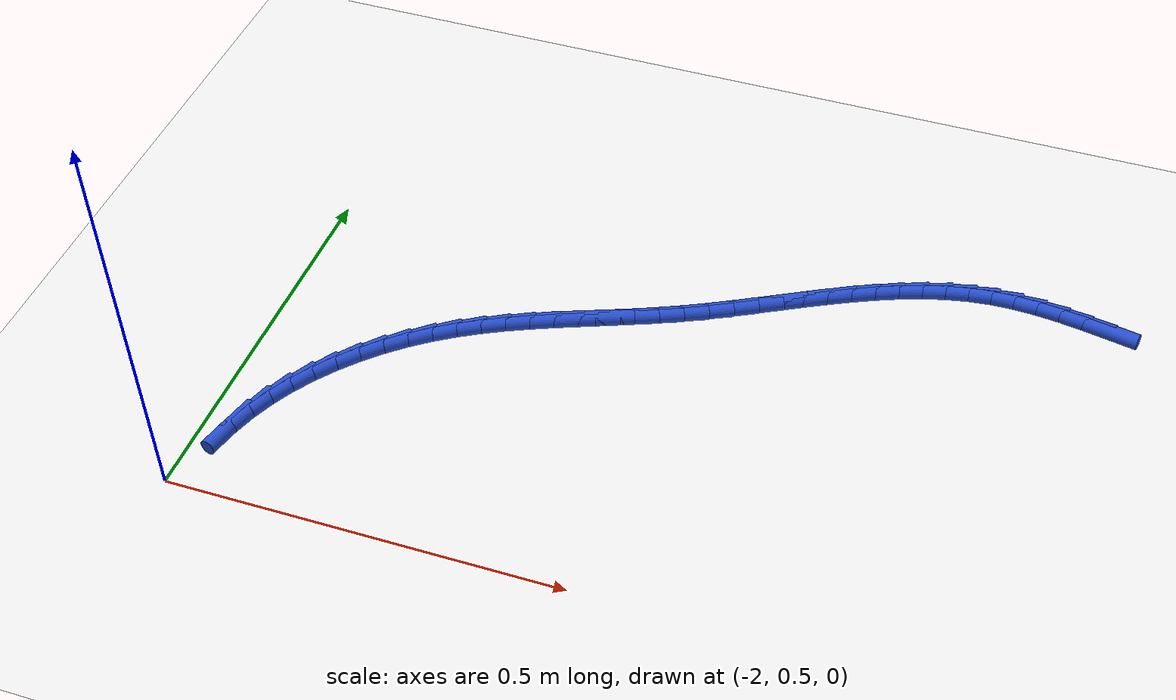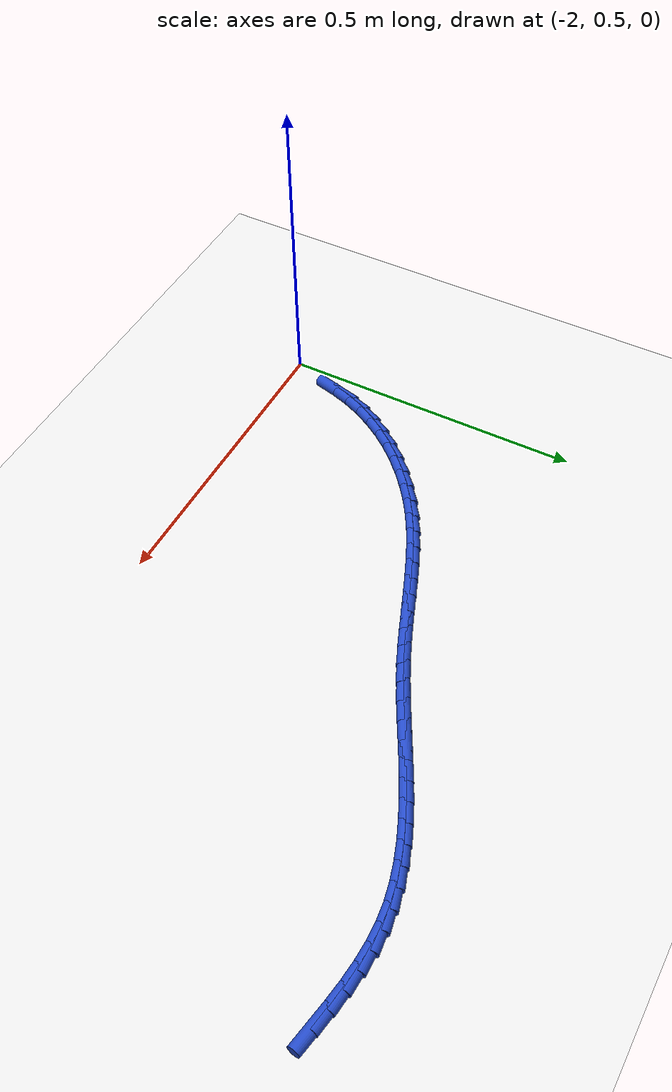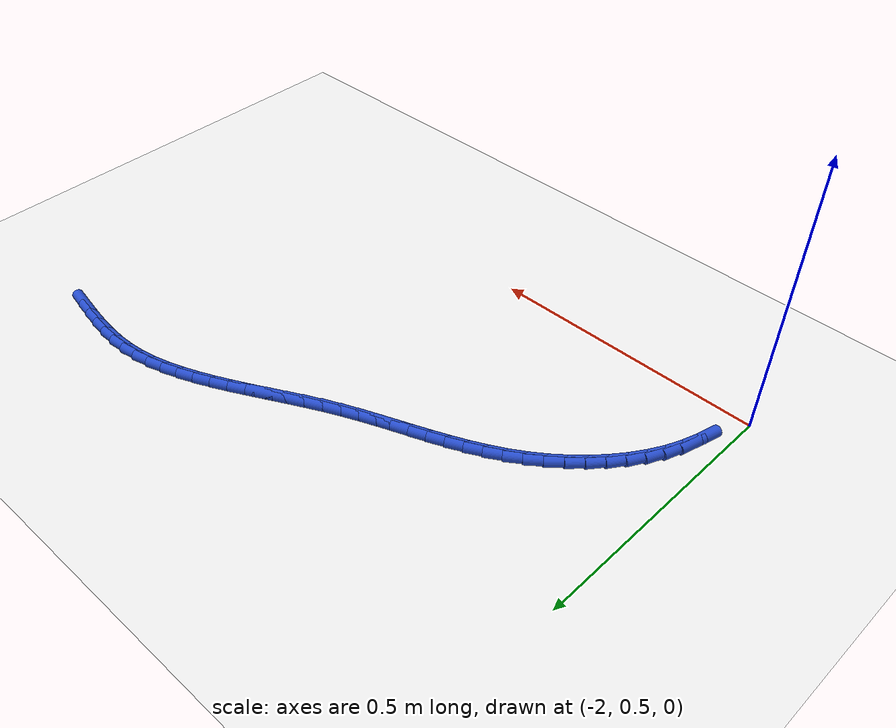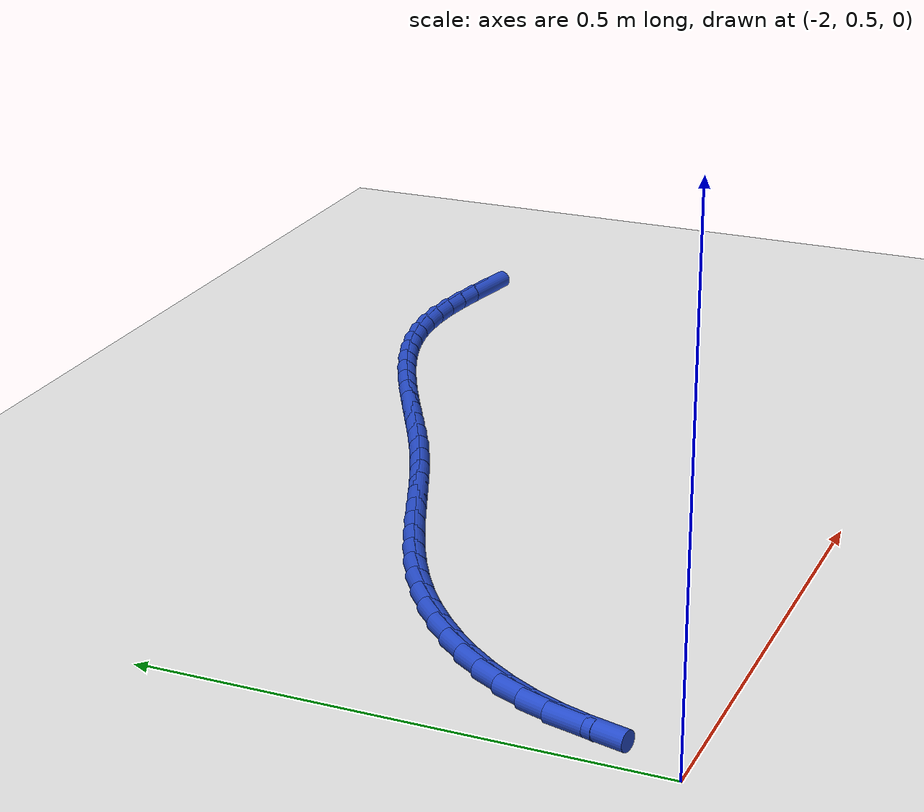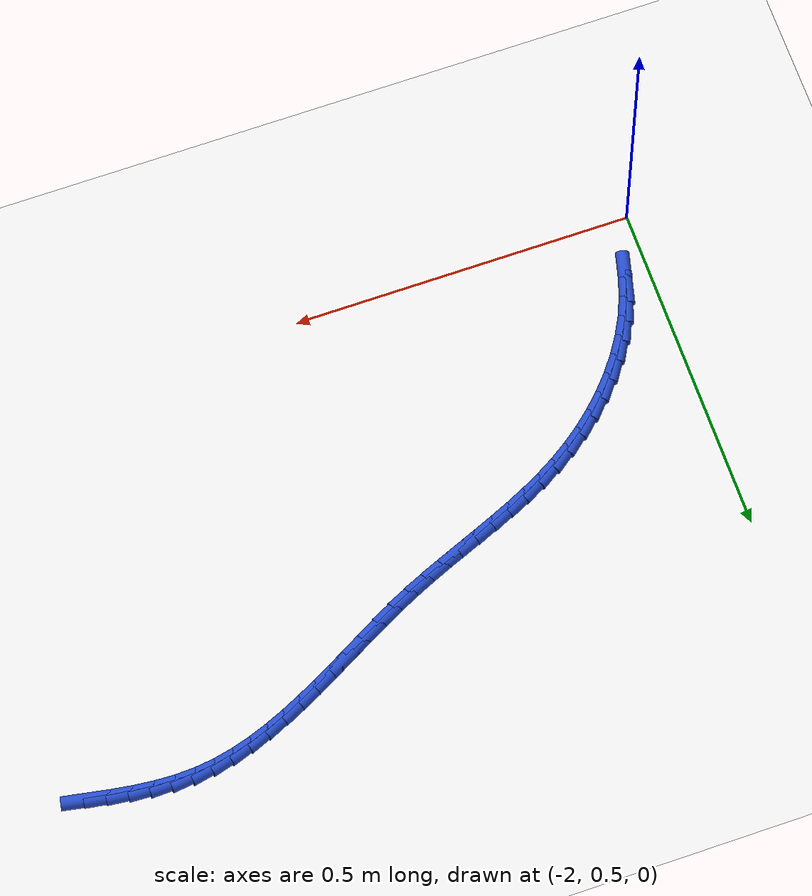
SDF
<sdf version="1.6">
 <world name="default">
  <model name="ground_plane">
   <static>1</static>
   <link name="link">
    <collision name="collision">
     <geometry><plane><normal>0 0 1</normal><size>100 100</size></plane></geometry>
     <surface><friction><ode><mu>100</mu><mu2>50</mu2></ode></friction></surface>
    </collision>
    <visual name="visual">
     <cast_shadows>0</cast_shadows>
     <geometry><plane><normal>0 0 1</normal><size>100 100</size></plane></geometry>
     <material>
      <script><uri>file://media/materials/scripts/gazebo.material</uri><name>Gazebo/WhiteGlow</name></script>
     </material>
    </visual>
   </link>
  </model>
  <model name="line">
   <link name="link_53">
    <pose>-1.0016771595318588 1.0849362925920887 0.01 0 1.57 -0.1839857550346639</pose>
    <collision name="collision">
     <geometry><cylinder><radius>0.01</radius><length>0.08</length></cylinder></geometry>
    </collision>
    <visual name="visual">
     <material>
      <script><name>Gazebo/Blue</name><uri>file://media/materials/scripts/gazebo.material</uri></script>
     </material>
     <geometry><cylinder><radius>0.01</radius><length>0.08</length></cylinder></geometry>
    </visual>
   </link>
   <link name="link_54">
    <pose>-1.032269160437122 1.0906291664399068 0.01 0 1.57 -0.15236671684889933</pose>
    <collision name="collision">
     <geometry><cylinder><radius>0.01</radius><length>0.08</length></cylinder></geometry>
    </collision>
    <visual name="visual">
     <material>
      <script><name>Gazebo/Blue</name><uri>file://media/materials/scripts/gazebo.material</uri></script>
     </material>
     <geometry><cylinder><radius>0.01</radius><length>0.08</length></cylinder></geometry>
    </visual>
   </link>
   <link name="link_55">
    <pose>-1.0625953658998235 1.095285963503557 0.01 0 1.57 -0.1063541593061356</pose>
    <collision name="collision">
     <geometry><cylinder><radius>0.01</radius><length>0.08</length></cylinder></geometry>
    </collision>
    <visual name="visual">
     <material>
      <script><name>Gazebo/Blue</name><uri>file://media/materials/scripts/gazebo.material</uri></script>
     </material>
     <geometry><cylinder><radius>0.01</radius><length>0.08</length></cylinder></geometry>
    </visual>
   </link>
   <link name="link_56">
    <pose>-1.0926401350253978 1.0984934523183065 0.01 0 1.57 -0.045181112483734014</pose>
    <collision name="collision">
     <geometry><cylinder><radius>0.01</radius><length>0.08</length></cylinder></geometry>
    </collision>
    <visual name="visual">
     <material>
      <script><name>Gazebo/Blue</name><uri>file://media/materials/scripts/gazebo.material</uri></script>
     </material>
     <geometry><cylinder><radius>0.01</radius><length>0.08</length></cylinder></geometry>
    </visual>
   </link>
   <link name="link_57">
    <pose>-1.1223878269192817 1.0998384014194242 0.01 0 1.57 0.031612461838247695</pose>
    <collision name="collision">
     <geometry><cylinder><radius>0.01</radius><length>0.08</length></cylinder></geometry>
    </collision>
    <visual name="visual">
     <material>
      <script><name>Gazebo/Blue</name><uri>file://media/materials/scripts/gazebo.material</uri></script>
     </material>
     <geometry><cylinder><radius>0.01</radius><length>0.08</length></cylinder></geometry>
    </visual>
   </link>
   <link name="link_58">
    <pose>-1.1518228006869096 1.0989075793421779 0.01 0 1.57 0.12149935102310915</pose>
    <collision name="collision">
     <geometry><cylinder><radius>0.01</radius><length>0.08</length></cylinder></geometry>
    </collision>
    <visual name="visual">
     <material>
      <script><name>Gazebo/Blue</name><uri>file://media/materials/scripts/gazebo.material</uri></script>
     </material>
     <geometry><cylinder><radius>0.01</radius><length>0.08</length></cylinder></geometry>
    </visual>
   </link>
   <link name="link_59">
    <pose>-1.1809347986956515 1.0953529821418946 0.01 0 1.57 0.2076296452427021</pose>
    <collision name="collision">
     <geometry><cylinder><radius>0.01</radius><length>0.08</length></cylinder></geometry>
    </collision>
    <visual name="visual">
     <material>
      <script><name>Gazebo/Blue</name><uri>file://media/materials/scripts/gazebo.material</uri></script>
     </material>
     <geometry><cylinder><radius>0.01</radius><length>0.08</length></cylinder></geometry>
    </visual>
   </link>
   <link name="link_60">
    <pose>-1.2097511770273859 1.0892823610178235 0.01 0 1.57 0.2822857974553673</pose>
    <collision name="collision">
     <geometry><cylinder><radius>0.01</radius><length>0.08</length></cylinder></geometry>
    </collision>
    <visual name="visual">
     <material>
      <script><name>Gazebo/Blue</name><uri>file://media/materials/scripts/gazebo.material</uri></script>
     </material>
     <geometry><cylinder><radius>0.01</radius><length>0.08</length></cylinder></geometry>
    </visual>
   </link>
   <link name="link_61">
    <pose>-1.238315336436125 1.080997876095636 0.01 0 1.57 0.34516588704980283</pose>
    <collision name="collision">
     <geometry><cylinder><radius>0.01</radius><length>0.08</length></cylinder></geometry>
    </collision>
    <visual name="visual">
     <material>
      <script><name>Gazebo/Blue</name><uri>file://media/materials/scripts/gazebo.material</uri></script>
     </material>
     <geometry><cylinder><radius>0.01</radius><length>0.08</length></cylinder></geometry>
    </visual>
   </link>
   <link name="link_62">
    <pose>-1.266670737465885 1.0708024119602444 0.01 0 1.57 0.3965333552298193</pose>
    <collision name="collision">
     <geometry><cylinder><radius>0.01</radius><length>0.08</length></cylinder></geometry>
    </collision>
    <visual name="visual">
     <material>
      <script><name>Gazebo/Blue</name><uri>file://media/materials/scripts/gazebo.material</uri></script>
     </material>
     <geometry><cylinder><radius>0.01</radius><length>0.08</length></cylinder></geometry>
    </visual>
   </link>
   <link name="link_63">
    <pose>-1.2948608406606836 1.0589988531965588 0.01 0 1.57 0.43692683836007373</pose>
    <collision name="collision">
     <geometry><cylinder><radius>0.01</radius><length>0.08</length></cylinder></geometry>
    </collision>
    <visual name="visual">
     <material>
      <script><name>Gazebo/Blue</name><uri>file://media/materials/scripts/gazebo.material</uri></script>
     </material>
     <geometry><cylinder><radius>0.01</radius><length>0.08</length></cylinder></geometry>
    </visual>
   </link>
   <link name="link_64">
    <pose>-1.3229291065645377 1.0458900843894918 0.01 0 1.57 0.46696185684867314</pose>
    <collision name="collision">
     <geometry><cylinder><radius>0.01</radius><length>0.08</length></cylinder></geometry>
    </collision>
    <visual name="visual">
     <material>
      <script><name>Gazebo/Blue</name><uri>file://media/materials/scripts/gazebo.material</uri></script>
     </material>
     <geometry><cylinder><radius>0.01</radius><length>0.08</length></cylinder></geometry>
    </visual>
   </link>
   <link name="link_65">
    <pose>-1.3509189957214651 1.0317789901239551 0.01 0 1.57 0.4872021601266697</pose>
    <collision name="collision">
     <geometry><cylinder><radius>0.01</radius><length>0.08</length></cylinder></geometry>
    </collision>
    <visual name="visual">
     <material>
      <script><name>Gazebo/Blue</name><uri>file://media/materials/scripts/gazebo.material</uri></script>
     </material>
     <geometry><cylinder><radius>0.01</radius><length>0.08</length></cylinder></geometry>
    </visual>
   </link>
   <link name="link_66">
    <pose>-1.3788739686754834 1.0169684549848592 0.01 0 1.57 0.49808532303377057</pose>
    <collision name="collision">
     <geometry><cylinder><radius>0.01</radius><length>0.08</length></cylinder></geometry>
    </collision>
    <visual name="visual">
     <material>
      <script><name>Gazebo/Blue</name><uri>file://media/materials/scripts/gazebo.material</uri></script>
     </material>
     <geometry><cylinder><radius>0.01</radius><length>0.08</length></cylinder></geometry>
    </visual>
   </link>
   <link name="link_67">
    <pose>-1.4068374859706094 1.001761363557116 0.01 0 1.57 0.49988490824244575</pose>
    <collision name="collision">
     <geometry><cylinder><radius>0.01</radius><length>0.08</length></cylinder></geometry>
    </collision>
    <visual name="visual">
     <material>
      <script><name>Gazebo/Blue</name><uri>file://media/materials/scripts/gazebo.material</uri></script>
     </material>
     <geometry><cylinder><radius>0.01</radius><length>0.08</length></cylinder></geometry>
    </visual>
   </link>
   <link name="link_68">
    <pose>-1.4348530081508613 0.9864606004256372 0.01 0 1.57 0.49269581591064326</pose>
    <collision name="collision">
     <geometry><cylinder><radius>0.01</radius><length>0.08</length></cylinder></geometry>
    </collision>
    <visual name="visual">
     <material>
      <script><name>Gazebo/Blue</name><uri>file://media/materials/scripts/gazebo.material</uri></script>
     </material>
     <geometry><cylinder><radius>0.01</radius><length>0.08</length></cylinder></geometry>
    </visual>
   </link>
   <link name="link_69">
    <pose>-1.4629639957602552 0.9713690501753339 0.01 0 1.57 0.4764353361423157</pose>
    <collision name="collision">
     <geometry><cylinder><radius>0.01</radius><length>0.08</length></cylinder></geometry>
    </collision>
    <visual name="visual">
     <material>
      <script><name>Gazebo/Blue</name><uri>file://media/materials/scripts/gazebo.material</uri></script>
     </material>
     <geometry><cylinder><radius>0.01</radius><length>0.08</length></cylinder></geometry>
    </visual>
   </link>
   <link name="link_70">
    <pose>-1.4912139093428094 0.9567895973911179 0.01 0 1.57 0.4508698298078696</pose>
    <collision name="collision">
     <geometry><cylinder><radius>0.01</radius><length>0.08</length></cylinder></geometry>
    </collision>
    <visual name="visual">
     <material>
      <script><name>Gazebo/Blue</name><uri>file://media/materials/scripts/gazebo.material</uri></script>
     </material>
     <geometry><cylinder><radius>0.01</radius><length>0.08</length></cylinder></geometry>
    </visual>
   </link>
   <link name="link_71">
    <pose>-1.519646119617783 0.9430247593490297 0.01 0 1.57 0.4205344689125636</pose>
    <collision name="collision">
     <geometry><cylinder><radius>0.01</radius><length>0.08</length></cylinder></geometry>
    </collision>
    <visual name="visual">
     <material>
      <script><name>Gazebo/Blue</name><uri>file://media/materials/scripts/gazebo.material</uri></script>
     </material>
     <geometry><cylinder><radius>0.01</radius><length>0.08</length></cylinder></geometry>
    </visual>
   </link>
   <link name="link_72">
    <pose>-1.5482668551595946 0.930225172712064 0.01 0 1.57 0.39781383958420435</pose>
    <collision name="collision">
     <geometry><cylinder><radius>0.01</radius><length>0.08</length></cylinder></geometry>
    </collision>
    <visual name="visual">
     <material>
      <script><name>Gazebo/Blue</name><uri>file://media/materials/scripts/gazebo.material</uri></script>
     </material>
     <geometry><cylinder><radius>0.01</radius><length>0.08</length></cylinder></geometry>
    </visual>
   </link>
   <link name="link_73">
    <pose>-1.5769880729459738 0.9181559813840023 0.01 0 1.57 0.3848910896534666</pose>
    <collision name="collision">
     <geometry><cylinder><radius>0.01</radius><length>0.08</length></cylinder></geometry>
    </collision>
    <visual name="visual">
     <material>
      <script><name>Gazebo/Blue</name><uri>file://media/materials/scripts/gazebo.material</uri></script>
     </material>
     <geometry><cylinder><radius>0.01</radius><length>0.08</length></cylinder></geometry>
    </visual>
   </link>
   <link name="link_74">
    <pose>-1.6057069966420425 0.9065220822214889 0.01 0 1.57 0.3819567492463376</pose>
    <collision name="collision">
     <geometry><cylinder><radius>0.01</radius><length>0.08</length></cylinder></geometry>
    </collision>
    <visual name="visual">
     <material>
      <script><name>Gazebo/Blue</name><uri>file://media/materials/scripts/gazebo.material</uri></script>
     </material>
     <geometry><cylinder><radius>0.01</radius><length>0.08</length></cylinder></geometry>
    </visual>
   </link>
   <link name="link_75">
    <pose>-1.6343208499129243 0.8950283720811695 0.01 0 1.57 0.389162374681091</pose>
    <collision name="collision">
     <geometry><cylinder><radius>0.01</radius><length>0.08</length></cylinder></geometry>
    </collision>
    <visual name="visual">
     <material>
      <script><name>Gazebo/Blue</name><uri>file://media/materials/scripts/gazebo.material</uri></script>
     </material>
     <geometry><cylinder><radius>0.01</radius><length>0.08</length></cylinder></geometry>
    </visual>
   </link>
   <link name="link_76">
    <pose>-1.6627268564237405 0.8833797478196885 0.01 0 1.57 0.40662742229693283</pose>
    <collision name="collision">
     <geometry><cylinder><radius>0.01</radius><length>0.08</length></cylinder></geometry>
    </collision>
    <visual name="visual">
     <material>
      <script><name>Gazebo/Blue</name><uri>file://media/materials/scripts/gazebo.material</uri></script>
     </material>
     <geometry><cylinder><radius>0.01</radius><length>0.08</length></cylinder></geometry>
    </visual>
   </link>
   <link name="link_77">
    <pose>-1.6908222398396135 0.8712811062936915 0.01 0 1.57 0.4344149697003469</pose>
    <collision name="collision">
     <geometry><cylinder><radius>0.01</radius><length>0.08</length></cylinder></geometry>
    </collision>
    <visual name="visual">
     <material>
      <script><name>Gazebo/Blue</name><uri>file://media/materials/scripts/gazebo.material</uri></script>
     </material>
     <geometry><cylinder><radius>0.01</radius><length>0.08</length></cylinder></geometry>
    </visual>
   </link>
   <link name="link_78">
    <pose>-1.7185042238256671 0.8584373443598229 0.01 0 1.57 0.4724747261406459</pose>
    <collision name="collision">
     <geometry><cylinder><radius>0.01</radius><length>0.08</length></cylinder></geometry>
    </collision>
    <visual name="visual">
     <material>
      <script><name>Gazebo/Blue</name><uri>file://media/materials/scripts/gazebo.material</uri></script>
     </material>
     <geometry><cylinder><radius>0.01</radius><length>0.08</length></cylinder></geometry>
    </visual>
   </link>
   <link name="link_79">
    <pose>-1.745670032047022 0.8445533588747283 0.01 0 1.57 0.5205557338316503</pose>
    <collision name="collision">
     <geometry><cylinder><radius>0.01</radius><length>0.08</length></cylinder></geometry>
    </collision>
    <visual name="visual">
     <material>
      <script><name>Gazebo/Blue</name><uri>file://media/materials/scripts/gazebo.material</uri></script>
     </material>
     <geometry><cylinder><radius>0.01</radius><length>0.08</length></cylinder></geometry>
    </visual>
   </link>
   <link name="link_80">
    <pose>-1.7722168881688023 0.8293340466950525 0.01 0 1.57 0.5780948313993897</pose>
    <collision name="collision">
     <geometry><cylinder><radius>0.01</radius><length>0.08</length></cylinder></geometry>
    </collision>
    <visual name="visual">
     <material>
      <script><name>Gazebo/Blue</name><uri>file://media/materials/scripts/gazebo.material</uri></script>
     </material>
     <geometry><cylinder><radius>0.01</radius><length>0.08</length></cylinder></geometry>
    </visual>
   </link>
   <link name="link_81">
    <pose>-1.7980419431710715 0.8124845183273244 0.01 0 1.57 0.6421056183658653</pose>
    <collision name="collision">
     <geometry><cylinder><radius>0.01</radius><length>0.08</length></cylinder></geometry>
    </collision>
    <visual name="visual">
     <material>
      <script><name>Gazebo/Blue</name><uri>file://media/materials/scripts/gazebo.material</uri></script>
     </material>
     <geometry><cylinder><radius>0.01</radius><length>0.08</length></cylinder></geometry>
    </visual>
   </link>
   <link name="link_82">
    <pose>-1.823006398618186 0.7938155537069517 0.01 0 1.57 0.7071885564820788</pose>
    <collision name="collision">
     <geometry><cylinder><radius>0.01</radius><length>0.08</length></cylinder></geometry>
    </collision>
    <visual name="visual">
     <material>
      <script><name>Gazebo/Blue</name><uri>file://media/materials/scripts/gazebo.material</uri></script>
     </material>
     <geometry><cylinder><radius>0.01</radius><length>0.08</length></cylinder></geometry>
    </visual>
   </link>
   <link name="link_83">
    <pose>-1.8468775170950495 0.7734140562643214 0.01 0 1.57 0.7735577942496312</pose>
    <collision name="collision">
     <geometry><cylinder><radius>0.01</radius><length>0.08</length></cylinder></geometry>
    </collision>
    <visual name="visual">
     <material>
      <script><name>Gazebo/Blue</name><uri>file://media/materials/scripts/gazebo.material</uri></script>
     </material>
     <geometry><cylinder><radius>0.01</radius><length>0.08</length></cylinder></geometry>
    </visual>
   </link>
   <link name="link_84">
    <pose>-1.869407407810521 0.7514114711437982 0.01 0 1.57 0.842334633614168</pose>
    <collision name="collision">
     <geometry><cylinder><radius>0.01</radius><length>0.08</length></cylinder></geometry>
    </collision>
    <visual name="visual">
     <material>
      <script><name>Gazebo/Blue</name><uri>file://media/materials/scripts/gazebo.material</uri></script>
     </material>
     <geometry><cylinder><radius>0.01</radius><length>0.08</length></cylinder></geometry>
    </visual>
   </link>
   <link name="link_85">
    <pose>-1.8903481799734603 0.7279392434897453 0.01 0 1.57 0.9146243006520282</pose>
    <collision name="collision">
     <geometry><cylinder><radius>0.01</radius><length>0.08</length></cylinder></geometry>
    </collision>
    <visual name="visual">
     <material>
      <script><name>Gazebo/Blue</name><uri>file://media/materials/scripts/gazebo.material</uri></script>
     </material>
     <geometry><cylinder><radius>0.01</radius><length>0.08</length></cylinder></geometry>
    </visual>
   </link>
   <link name="link_86">
    <pose>-1.9094519427927268 0.7031288184465273 0.01 0 1.57 0.9915166084522595</pose>
    <collision name="collision">
     <geometry><cylinder><radius>0.01</radius><length>0.08</length></cylinder></geometry>
    </collision>
    <visual name="visual">
     <material>
      <script><name>Gazebo/Blue</name><uri>file://media/materials/scripts/gazebo.material</uri></script>
     </material>
     <geometry><cylinder><radius>0.01</radius><length>0.08</length></cylinder></geometry>
    </visual>
   </link>
   <link name="link_87">
    <pose>-1.9264708054771806 0.6771116411585075 0.01 0 1.57 1.0740603965146212</pose>
    <collision name="collision">
     <geometry><cylinder><radius>0.01</radius><length>0.08</length></cylinder></geometry>
    </collision>
    <visual name="visual">
     <material>
      <script><name>Gazebo/Blue</name><uri>file://media/materials/scripts/gazebo.material</uri></script>
     </material>
     <geometry><cylinder><radius>0.01</radius><length>0.08</length></cylinder></geometry>
    </visual>
   </link>
   <link name="link_88">
    <pose>-1.94115687723568 0.6500191567700501 0.01 0 1.57 1.163118092132106</pose>
    <collision name="collision">
     <geometry><cylinder><radius>0.01</radius><length>0.08</length></cylinder></geometry>
    </collision>
    <visual name="visual">
     <material>
      <script><name>Gazebo/Blue</name><uri>file://media/materials/scripts/gazebo.material</uri></script>
     </material>
     <geometry><cylinder><radius>0.01</radius><length>0.08</length></cylinder></geometry>
    </visual>
   </link>
   <link name="link_89">
    <pose>-1.9532650137356098 0.6219828614689145 0.01 0 1.57 1.2510138878553438</pose>
    <collision name="collision">
     <geometry><cylinder><radius>0.01</radius><length>0.08</length></cylinder></geometry>
    </collision>
    <visual name="visual">
     <material>
      <script><name>Gazebo/Blue</name><uri>file://media/materials/scripts/gazebo.material</uri></script>
     </material>
     <geometry><cylinder><radius>0.01</radius><length>0.08</length></cylinder></geometry>
    </visual>
   </link>
   <link name="link_90">
    <pose>-1.962816532437817 0.5931392036803376 0.01 0 1.57 1.321826995663437</pose>
    <collision name="collision">
     <geometry><cylinder><radius>0.01</radius><length>0.08</length></cylinder></geometry>
    </collision>
    <visual name="visual">
     <material>
      <script><name>Gazebo/Blue</name><uri>file://media/materials/scripts/gazebo.material</uri></script>
     </material>
     <geometry><cylinder><radius>0.01</radius><length>0.08</length></cylinder></geometry>
    </visual>
   </link>
  </model>
 </world>
</sdf>
